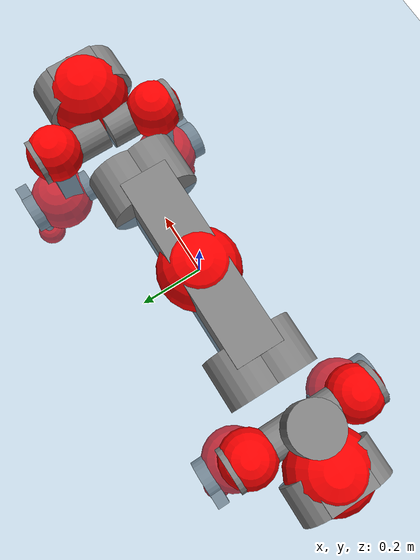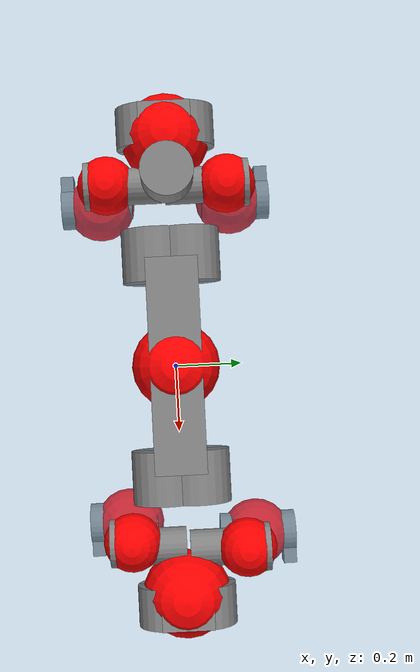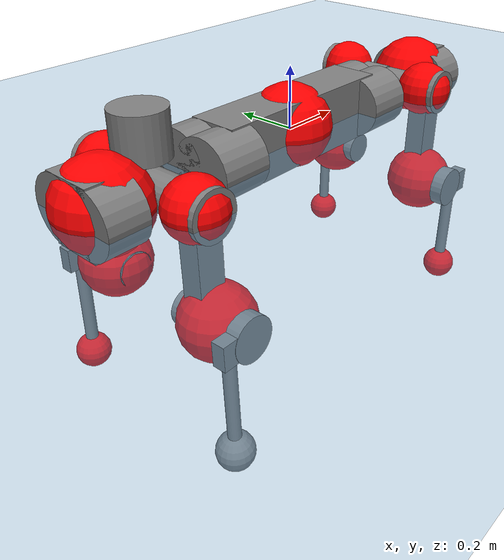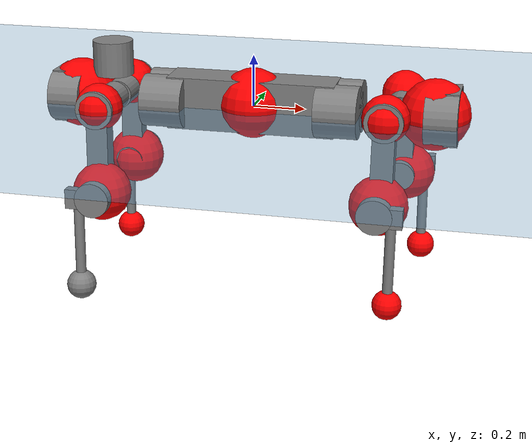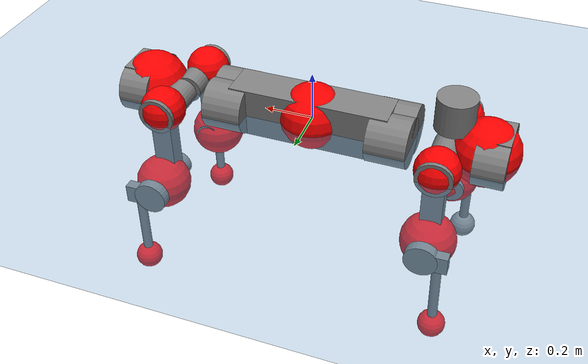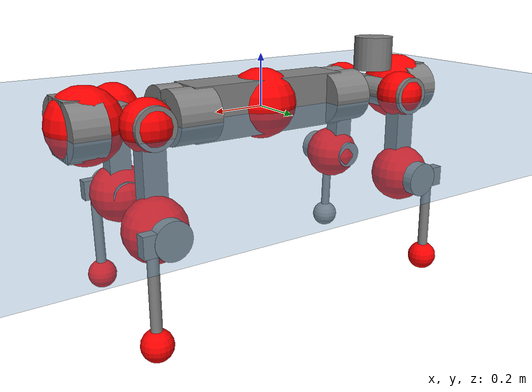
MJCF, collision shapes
<mujoco model="anymal_c">
  <compiler angle="radian" assetdir="assets" balanceinertia="true" inertiafromgeom="false"/>

  <option timestep="0.005" density="1.2" viscosity="2e-05"/>

  <size nkey="1"/>

  <visual>
    <quality shadowsize="8192"/>
    <map shadowclip="0.5"/>
  </visual>

  <default>
    <default class="/">
      <material specular="0" shininess="0.25"/>
      <geom contype="0" conaffinity="0" group="1" solref="-1000 -80"/>
      <site size="0.01 0.005 0.005" group="5"/>
      <general forcelimited="true" forcerange="-80 80" biastype="affine" gainprm="80" biasprm="0 -80 -2"/>
      <default class="anymal_c">
        <joint armature="0.01" damping="0.01" frictionloss="0.1"/>
        <default class="visual">
          <geom type="mesh" group="2"/>
          <default class="visual_zflip"/>
        </default>
        <default class="collision">
          <geom type="cylinder" group="3"/>
          <default class="foot">
            <geom size="0.03 0 0" type="sphere" condim="6" priority="1" friction="0.8 0.02 0.01" solimp="0.015 1 0.03"/>
          </default>
        </default>
      </default>
      <default class="reward_collision_sphere">
        <geom group="5" rgba="1 0 0 1"/>
      </default>
    </default>
  </default>

  <asset>
    <texture type="skybox" colorspace="auto" name="//unnamed_texture_0" builtin="gradient" rgb1="0.95 0.95 0.95" rgb2="0.95 0.95 0.95" width="100" height="600"/>
    <texture type="2d" colorspace="auto" name="texplane" builtin="checker" rgb1="0.345 0.575 0.748" rgb2="0.345 0.575 0.748" markrgb="1 1 1" width="512" height="512"/>
    <texture type="2d" colorspace="linear" name="base" file="base.png"/>
    <texture type="2d" colorspace="linear" name="top_shell" file="top_shell.png"/>
    <texture type="2d" colorspace="linear" name="bottom_shell" file="bottom_shell.png"/>
    <texture type="2d" colorspace="linear" name="remote" file="remote.png"/>
    <texture type="2d" colorspace="linear" name="hatch" file="hatch.png"/>
    <texture type="2d" colorspace="linear" name="handle" file="handle.png"/>
    <texture type="2d" colorspace="linear" name="face" file="face.png"/>
    <texture type="2d" colorspace="linear" name="battery" file="battery.png"/>
    <texture type="2d" colorspace="linear" name="lidar_cage" file="lidar_cage.png"/>
    <texture type="2d" colorspace="linear" name="depth_camera" file="depth_camera.png"/>
    <texture type="2d" colorspace="linear" name="wide_angle_camera" file="wide_angle_camera.png"/>
    <texture type="2d" colorspace="linear" name="lidar" file="lidar.png"/>
    <texture type="2d" colorspace="linear" name="drive" file="drive.png"/>
    <texture type="2d" colorspace="linear" name="hip_l" file="hip_l.png"/>
    <texture type="2d" colorspace="linear" name="shank_l" file="shank_l.png"/>
    <texture type="2d" colorspace="linear" name="foot" file="foot.png"/>
    <texture type="2d" colorspace="linear" name="thigh" file="thigh.png"/>
    <texture type="2d" colorspace="linear" name="shank_r" file="shank_r.png"/>
    <texture type="2d" colorspace="linear" name="hip_r" file="hip_r.png"/>
    <material name="MatPlane" class="/" texture="texplane" texuniform="true" texrepeat="2 2" specular="0.9" shininess="0.5"/>
    <material name="black_plastic" class="/" rgba="0.007 0.007 0.007 1"/>
    <material name="green" class="/" rgba="0.052 0.178 0.033 1"/>
    <material name="red" class="/" rgba="0.178 0.006 0.005 1"/>
    <material name="yellow" class="/" rgba="0.178 0.119 0.006 1"/>
    <material name="lwl" class="/" rgba="0.8 0.8 0.8 1"/>
    <material name="base" class="/" texture="base"/>
    <material name="top_shell" class="/" texture="top_shell"/>
    <material name="bottom_shell" class="/" texture="bottom_shell"/>
    <material name="hip_l" class="/" texture="hip_l"/>
    <material name="thigh" class="/" texture="thigh"/>
    <material name="shank_l" class="/" texture="shank_l"/>
    <material name="foot" class="/" texture="foot"/>
    <material name="hip_r" class="/" texture="hip_r"/>
    <material name="shank" class="/" texture="shank_r"/>
    <material name="hatch" class="/" texture="hatch"/>
    <material name="remote" class="/" texture="remote"/>
    <material name="handle" class="/" texture="handle"/>
    <material name="face" class="/" texture="face"/>
    <material name="depth_camera" class="/" texture="depth_camera"/>
    <material name="wide_angle_camera" class="/" texture="wide_angle_camera"/>
    <material name="battery" class="/" texture="battery"/>
    <material name="lidar_cage" class="/" texture="lidar_cage"/>
    <material name="lidar" class="/" texture="lidar"/>
    <material name="drive" class="/" texture="drive"/>
    <mesh name="base_0" class="/" file="base_0.obj"/>
    <mesh name="base_1" class="/" file="base_1.obj"/>
    <mesh name="base_2" class="/" file="base_2.obj"/>
    <mesh name="base_3" class="/" file="base_3.obj"/>
    <mesh name="base_4" class="/" file="base_4.obj"/>
    <mesh name="base_5" class="/" file="base_5.obj"/>
    <mesh name="top_shell" class="/" file="top_shell.obj"/>
    <mesh name="bottom_shell" class="/" file="bottom_shell.obj"/>
    <mesh name="remote" class="/" file="remote.obj"/>
    <mesh name="handle" class="/" file="handle.obj"/>
    <mesh name="face" class="/" file="face.obj"/>
    <mesh name="wide_angle_camera" class="/" file="wide_angle_camera.obj"/>
    <mesh name="depth_camera" class="/" file="depth_camera.obj"/>
    <mesh name="battery" class="/" file="battery.obj"/>
    <mesh name="lidar_cage" class="/" file="lidar_cage.obj"/>
    <mesh name="lidar" class="/" file="lidar.obj"/>
    <mesh name="drive" class="/" file="drive.obj"/>
    <mesh name="hip_l" class="/" file="hip_l.obj"/>
    <mesh name="thigh" class="/" file="thigh.obj"/>
    <mesh name="shank_l" class="/" file="shank_l.obj"/>
    <mesh name="foot" class="/" file="foot.obj"/>
    <mesh name="hip_r" class="/" file="hip_r.obj"/>
    <mesh name="hatch" class="/" file="hatch.obj"/>
    <mesh name="shank_r" class="/" file="shank_r.obj"/>
  </asset>

  <worldbody>
    <geom name="floor" class="/" size="100 100 0.125" type="plane" group="0" material="MatPlane"/>
    <light name="toplight_shadow" class="/" pos="0 0 5" dir="0.0990148 0.0990148 -0.990148" type="directional" ambient="0.04 0.04 0.04" diffuse="0.55 0.55 0.55" specular="0.12 0.12 0.12"/>
    <light name="toplight_fill" class="/" pos="0 0 5" dir="0.0990148 0.0990148 -0.990148" type="directional" castshadow="false" ambient="0.04 0.04 0.04" diffuse="0.3 0.3 0.3" specular="0.08 0.08 0.08"/>
    <body name="trunk" childclass="anymal_c" pos="-0.000963197 0.000335521 0.0129636" quat="0.999999 -0.0007128 -0.000499438 -0.00122676">
      <inertial pos="-3.02169e-05 -0.0168135 0.0425178" quat="0.500146 0.500977 0.49876 0.500114" mass="28.3745" diaginertia="5.24335 0.111059 0.459106"/>
      <joint name="//unnamed_joint_0" type="free" armature="0" damping="0" frictionloss="0"/>
      <geom name="//unnamed_geom_1" class="visual" material="green" mesh="base_0"/>
      <geom name="//unnamed_geom_2" class="visual" material="yellow" mesh="base_1"/>
      <geom name="//unnamed_geom_3" class="visual" material="red" mesh="base_2"/>
      <geom name="//unnamed_geom_4" class="visual" material="black_plastic" mesh="base_3"/>
      <geom name="//unnamed_geom_5" class="visual" material="lwl" mesh="base_4"/>
      <geom name="//unnamed_geom_6" class="visual" material="base" mesh="base_5"/>
      <geom name="trunk_1" class="collision" size="0.32638 0.0787814 0.10129" type="box"/>
      <geom name="trunk_2" class="collision" size="0.10129 0.081595" pos="0.337647 0.0489235 0" quat="0.707107 0 0.707107 0"/>
      <geom name="trunk_3" class="collision" size="0.10129 0.081595" pos="-0.337647 0.0489235 0" quat="0.707107 0 0.707107 0"/>
      <geom name="trunk_4" class="collision" size="0.10129 0.081595" pos="0.337647 -0.0489235 0" quat="0.707107 0 0.707107 0"/>
      <geom name="trunk_5" class="collision" size="0.10129 0.081595" pos="-0.337647 -0.0489235 0" quat="0.707107 0 0.707107 0"/>
      <geom name="//unnamed_geom_12" class="visual" material="top_shell" mesh="top_shell"/>
      <geom name="//unnamed_geom_13" class="visual" material="bottom_shell" mesh="bottom_shell"/>
      <geom name="//unnamed_geom_14" class="visual" material="remote" mesh="remote"/>
      <geom name="//unnamed_geom_15" class="visual" material="handle" mesh="handle"/>
      <geom name="//unnamed_geom_16" class="visual" pos="0.643469 0 0" quat="1 0 0 0" material="face" mesh="face"/>
      <geom name="trunk_6" class="collision" size="0.0618996 0.0787814 0.10129" pos="0.728851 0 0" type="box"/>
      <geom name="//unnamed_geom_18" class="collision" size="0.10129 0.0618996" pos="0.728851 0.0489235 0" quat="0.707107 0 0.707107 0"/>
      <geom name="//unnamed_geom_19" class="collision" size="0.10129 0.0618996" pos="0.728851 -0.0489235 0" quat="0.707107 0 0.707107 0"/>
      <geom name="//unnamed_geom_20" class="visual" pos="0.716647 0 -0.0296031" quat="0.965926 0 0.258819 0" material="depth_camera" mesh="depth_camera"/>
      <geom name="//unnamed_geom_21" class="visual" pos="0.796381 0 0.0168418" material="wide_angle_camera" mesh="wide_angle_camera"/>
      <geom name="//unnamed_geom_22" class="visual_zflip" pos="-0.643469 0 0" quat="0 0 0 1" material="face" mesh="face"/>
      <geom name="trunk_7" class="collision" size="0.0618996 0.0787814 0.10129" pos="-0.728851 0 0" quat="0 0 0 1" type="box"/>
      <geom name="//unnamed_geom_24" class="collision" size="0.10129 0.0618996" pos="-0.728851 -0.0489235 0" quat="0 -0.707107 0 0.707107"/>
      <geom name="//unnamed_geom_25" class="collision" size="0.10129 0.0618996" pos="-0.728851 0.0489235 0" quat="0 -0.707107 0 0.707107"/>
      <geom name="//unnamed_geom_26" class="visual" pos="-0.716647 0 -0.0296031" quat="0 -0.258819 0 0.965926" material="depth_camera" mesh="depth_camera"/>
      <geom name="//unnamed_geom_27" class="visual_zflip" pos="-0.796381 0 0.0168418" quat="0 0 0 1" material="wide_angle_camera" mesh="wide_angle_camera"/>
      <geom name="//unnamed_geom_28" class="visual" material="battery" mesh="battery"/>
      <geom name="//unnamed_geom_29" class="visual" pos="0 0.0422211 0.0359303" quat="0.683013 -0.183013 0.183013 0.683013" material="depth_camera" mesh="depth_camera"/>
      <geom name="//unnamed_geom_30" class="visual" pos="0 -0.0422211 0.0359303" quat="0.683013 0.183013 0.183013 -0.683013" material="depth_camera" mesh="depth_camera"/>
      <geom name="//unnamed_geom_31" class="visual" pos="-0.565073 0 0.0826902" quat="1 0 0 0" material="lidar_cage" mesh="lidar_cage"/>
      <geom name="trunk_8" class="collision" size="0.0787814 0.0675269" pos="-0.565073 0 0.150192"/>
      <geom name="//unnamed_geom_33" class="visual" pos="-0.565073 -0.000335314 0.15998" quat="0.707107 0 0 -0.707107" material="lidar" mesh="lidar"/>
      <geom name="//unnamed_geom_34" class="visual" pos="0.465564 0.0728377 -7.35079e-09" quat="0.258819 0.965926 0 0" material="drive" mesh="drive"/>
      <geom name="//unnamed_geom_35" class="visual" pos="0.465564 -0.0728377 7.35079e-09" quat="0.258819 -0.965926 0 0" material="drive" mesh="drive"/>
      <geom name="//unnamed_geom_36" class="visual" pos="-0.465564 0.0728377 7.35079e-09" quat="0 0 0.965926 -0.258819" material="drive" mesh="drive"/>
      <geom name="//unnamed_geom_37" class="visual" pos="-0.465564 -0.0728377 -7.35079e-09" quat="0 0 -0.965926 -0.258819" material="drive" mesh="drive"/>
      <geom name="//unnamed_geom_38" class="visual" pos="0.180078 0 0.0821277" quat="1 0 0 0" material="hatch" mesh="hatch"/>
      <geom name="//unnamed_geom_39" class="reward_collision_sphere" size="0.135054"/>
      <geom name="//unnamed_geom_40" class="reward_collision_sphere" size="0.135054" pos="0.69858 0 0"/>
      <geom name="//unnamed_geom_41" class="reward_collision_sphere" size="0.135054" pos="-0.69858 0 0"/>
      <site name="imu" pos="0.344297 0.0605138 0.00824752" size="0.0112545"/>
      <camera name="track" pos="0 -1.39781 0" quat="0.707107 0.707107 0 0" mode="trackcom"/>
      <camera name="ego_camera" pos="0.69858 0 -0.0450015" quat="-0.5 -0.5 0.5 0.5"/>
      <body name="LF_HIP" pos="0.468916 0.0845504 -0.00424296" quat="0.256946 0.966421 0.00224009 -0.00204532">
        <inertial pos="0.103143 -0.00758728 0.00130187" quat="-0.144933 0.701713 -0.117998 0.68751" mass="4.73475" diaginertia="0.0579339 0.00101897 0.00558837"/>
        <joint name="LF_HAA" pos="0 0 0" axis="0.999969 -0.00567606 0.00543927" range="-0.529552 0.468592" armature="0.00414788" damping="0" frictionloss="0.195178"/>
        <geom name="//unnamed_geom_42" class="visual" pos="0 -0.000432414 7.10236e-05" quat="0.258819 -0.965926 0 0" material="hip_l" mesh="hip_l"/>
        <geom name="//unnamed_geom_43" class="visual" pos="0.0929887 -0.101589 -0.0618046" quat="0.183013 -0.683013 0.683013 0.183013" material="drive" mesh="drive"/>
        <geom name="//unnamed_geom_44" class="collision" size="0.0562724 0.0787814" pos="0.0929887 -0.00835879 -0.00776838" quat="-0.353553 -0.612372 0.612372 -0.353553"/>
        <body name="LF_THIGH" pos="0.0941334 -0.0457744 -0.0566948" quat="0.183002 -0.682888 0.683077 0.18325">
          <inertial pos="0.0510655 0.00190814 -0.265619" quat="0.991169 -0.00293296 -0.0939753 0.0935098" mass="4.77233" diaginertia="0.258699 0.00492013 0.0109874"/>
          <joint name="LF_HFE" pos="0 0 0" axis="0.998801 0.0486144 -0.0058157" stiffness="0.0375408" range="-2.89631 2.95023" armature="0.00661629" damping="0.0177525" frictionloss="0.0872057"/>
          <geom name="//unnamed_geom_45" class="visual" pos="0.0169811 2.67583e-05 0" quat="0.707107 0 0 -0.707107" material="thigh" mesh="thigh"/>
          <geom name="//unnamed_geom_46" class="collision" size="0.0731541 0.0450179" pos="0.062096 0 0" quat="0.5 0.5 -0.5 -0.5"/>
          <geom name="//unnamed_geom_47" class="collision" size="0.0422043 0.0337634 0.159042" pos="0.046572 0 -0.158984" quat="0.707107 0 0 -0.707107" type="box"/>
          <geom name="//unnamed_geom_48" class="visual" pos="0.155706 0 -0.320636" quat="1 0 0 0" material="drive" mesh="drive"/>
          <geom name="//unnamed_geom_49" class="collision" size="0.0562724 0.0787814" pos="0.0470377 0 -0.320636" quat="0.707107 0 0.707107 0"/>
          <geom name="//unnamed_geom_50" class="reward_collision_sphere" size="0.0900358" pos="0.03881 0 0"/>
          <body name="LF_SHANK" pos="0.165259 -0.0127797 -0.334309" quat="0.999967 -0.00162808 -0.00557718 0.00569275">
            <inertial pos="0.0124052 -0.0433974 -0.0894836" quat="0.992887 -0.11724 -0.00032454 -0.0207642" mass="1.08514" diaginertia="0.088694 0.00157509 0.00224023"/>
            <joint name="LF_KFE" pos="0 0 0" axis="0.999359 0.0183639 -0.030715" range="-3.24008 3.25789" armature="0.0171387" damping="0" frictionloss="0.185668"/>
            <geom name="//unnamed_geom_51" class="visual" pos="0.00553718 0.0295245 0" quat="0.707107 0 0 -0.707107" material="shank_l" mesh="shank_l"/>
            <geom name="LF_kfe_act" class="collision" size="0.0675269 0.022509" pos="0.031048 0 0" quat="0.5 0.5 -0.5 -0.5"/>
            <geom name="//unnamed_geom_53" class="collision" size="0.0647121 0.0379839 0.0213835" pos="0.031048 -0.0401865 0" quat="0.5 0.5 -0.5 -0.5" type="box"/>
            <geom name="//unnamed_geom_54" class="visual" pos="0.0202575 -0.0519543 -0.380229" quat="0.382683 0 0 -0.92388" material="foot" mesh="foot"/>
            <geom name="LF_calf" class="collision" size="0.0196953 0.158972" pos="0.0202588 -0.0614689 -0.190114" quat="0.707107 0 0 -0.707107"/>
            <geom name="LF_foot" class="foot" size="0.0156621" pos="0.0202588 -0.0614689 -0.354916" quat="0.707107 0 0 -0.707107"/>
            <geom name="//unnamed_geom_57" class="reward_collision_sphere" size="0.112545" pos="-0.07762 0 0"/>
            <geom name="//unnamed_geom_58" class="reward_collision_sphere" size="0.0562724" pos="0.0202588 -0.0614689 -0.354916"/>
            <site name="LF_foot" class="foot" pos="0.0202588 -0.0614689 -0.354916" quat="0.707107 0 0 -0.707107" size="0.0112545"/>
          </body>
        </body>
      </body>
      <body name="RF_HIP" pos="0.457347 -0.0612894 -0.00197924" quat="0.259504 -0.965715 0.000421011 0.00716808">
        <inertial pos="0.089876 0.00537012 -0.00362501" quat="0.140061 0.679213 0.120663 0.710277" mass="4.28074" diaginertia="0.0663254 0.00110811 0.0056905"/>
        <joint name="RF_HAA" pos="0 0 0" axis="0.999935 0.0113577 -0.00108843" range="-0.767202 1.04332" armature="0.0128428" damping="0" frictionloss="0.18024"/>
        <geom name="//unnamed_geom_59" class="visual" pos="0 0.00043241 7.10234e-05" quat="0.258819 0.965926 0 0" material="hip_r" mesh="hip_r"/>
        <geom name="//unnamed_geom_60" class="visual" pos="0.0929887 0.101589 -0.0618046" quat="0.183013 0.683013 0.683013 -0.183013" material="drive" mesh="drive"/>
        <geom name="//unnamed_geom_61" class="collision" size="0.0562724 0.0787814" pos="0.0929887 0.00835879 -0.00776838" quat="-0.353553 0.612372 0.612372 0.353553"/>
        <body name="RF_THIGH" pos="0.0753895 0.0396381 -0.0456035" quat="0.185358 0.683128 0.683062 -0.180014">
          <inertial pos="0.0451113 0.0052132 -0.276026" quat="0.992144 -0.00655351 -0.0885054 0.0881716" mass="3.83369" diaginertia="0.254573 0.00432721 0.0054003"/>
          <joint name="RF_HFE" pos="0 0 0" axis="0.996585 -0.0474767 -0.0675591" stiffness="0.0172225" range="-3.50249 3.46425" armature="0.00973741" damping="0.07148" frictionloss="0.150495"/>
          <geom name="//unnamed_geom_62" class="visual" pos="0.0169811 2.67583e-05 0" quat="0.707107 0 0 -0.707107" material="thigh" mesh="thigh"/>
          <geom name="//unnamed_geom_63" class="collision" size="0.0731541 0.0450179" pos="0.062096 0 0" quat="0.5 0.5 0.5 0.5"/>
          <geom name="//unnamed_geom_64" class="collision" size="0.0422043 0.0337634 0.159042" pos="0.046572 0 -0.158984" quat="0.707107 0 0 0.707107" type="box"/>
          <geom name="//unnamed_geom_65" class="visual" pos="0.155706 0 -0.320636" quat="1 0 0 0" material="drive" mesh="drive"/>
          <geom name="//unnamed_geom_66" class="collision" size="0.0562724 0.0787814" pos="0.0470377 0 -0.320636" quat="0.707107 0 0.707107 0"/>
          <geom name="//unnamed_geom_67" class="reward_collision_sphere" size="0.0900358" pos="0.03881 0 0"/>
          <body name="RF_SHANK" pos="0.139141 -0.00635639 -0.331175" quat="0.999995 0.00147214 0.00265583 -4.25119e-05">
            <inertial pos="0.0174166 0.0495325 -0.108167" quat="0.992918 0.103479 -0.0239718 0.0532113" mass="1.01339" diaginertia="0.077065 0.00156516 0.00204818"/>
            <joint name="RF_KFE" pos="0 0 0" axis="0.99583 -0.0779754 0.047364" stiffness="0.0423446" range="-3.28905 3.43305" armature="0.0113392" damping="0" frictionloss="0.214684"/>
            <geom name="//unnamed_geom_68" class="visual" pos="0.00553714 -0.0295244 0" quat="0.707107 0 0 0.707107" material="shank" mesh="shank_r"/>
            <geom name="RF_kfe_act" class="collision" size="0.0675269 0.022509" pos="0.031048 0 0" quat="0.5 0.5 0.5 0.5"/>
            <geom name="//unnamed_geom_70" class="collision" size="0.0647121 0.0379839 0.0213835" pos="0.031048 0.0401865 0" quat="0.5 0.5 0.5 0.5" type="box"/>
            <geom name="//unnamed_geom_71" class="visual" pos="0.0202601 0.0519543 -0.380229" quat="0.382683 0 0 0.92388" material="foot" mesh="foot"/>
            <geom name="RF_calf" class="collision" size="0.0196953 0.158972" pos="0.0202588 0.0614689 -0.190114" quat="0.707107 0 0 0.707107"/>
            <geom name="RF_foot" class="foot" size="0.0255734" pos="0.0202588 0.0614689 -0.354916" quat="0.707107 0 0 0.707107"/>
            <geom name="//unnamed_geom_74" class="reward_collision_sphere" size="0.112545" pos="-0.07762 0 0"/>
            <geom name="//unnamed_geom_75" class="reward_collision_sphere" size="0.0562724" pos="0.0202588 0.0614689 -0.354916"/>
            <site name="RF_foot" class="foot" pos="0.0202588 0.0614689 -0.354916" quat="0.707107 0 0 0.707107" size="0.0112545"/>
          </body>
        </body>
      </body>
      <body name="LH_HIP" pos="-0.458984 0.0594884 -0.00418378" quat="-0.000267025 -0.00231959 0.965775 -0.259371">
        <inertial pos="0.0984055 0.0255566 -0.0150942" quat="0.0595392 0.650629 0.165963 0.738643" mass="4.90292" diaginertia="0.0475813 0.000698626 0.00667992"/>
        <joint name="LH_HAA" pos="0 0 0" axis="0.997872 0.045497 0.0467018" stiffness="0.067673" range="-0.624559 0.92502" armature="0.0107527" damping="0.0716198" frictionloss="0.0532751"/>
        <geom name="//unnamed_geom_76" class="visual" pos="0 0.00043241 7.10234e-05" quat="-0.258819 -0.965926 0 0" material="hip_r" mesh="hip_r"/>
        <geom name="//unnamed_geom_77" class="visual" pos="0.0929887 0.101589 -0.0618046" quat="0.183013 0.683013 0.683013 -0.183013" material="drive" mesh="drive"/>
        <geom name="//unnamed_geom_78" class="collision" size="0.0562724 0.0787814" pos="0.0929887 0.00835879 -0.00776838" quat="-0.353553 0.612372 0.612372 0.353553"/>
        <body name="LH_THIGH" pos="0.0919664 0.0657858 -0.0499845" quat="0.183163 0.686725 0.679166 -0.183286">
          <inertial pos="0.0561539 0.0128443 -0.275465" quat="0.994716 -0.00332553 -0.0365689 0.0958742" mass="4.10349" diaginertia="0.232866 0.004509 0.00523055"/>
          <joint name="LH_HFE" pos="0 0 0" axis="0.999992 0.00356815 -0.00201406" range="-3.13359 3.1094" armature="0.01237" damping="0.0485038" frictionloss="0.109471"/>
          <geom name="//unnamed_geom_79" class="visual" pos="0.0169811 2.67583e-05 0" quat="0.707107 0 0 -0.707107" material="thigh" mesh="thigh"/>
          <geom name="//unnamed_geom_80" class="collision" size="0.0731541 0.0450179" pos="0.062096 0 0" quat="0.5 0.5 -0.5 -0.5"/>
          <geom name="//unnamed_geom_81" class="collision" size="0.0422043 0.0337634 0.159042" pos="0.046572 0 -0.158984" quat="0.707107 0 0 -0.707107" type="box"/>
          <geom name="//unnamed_geom_82" class="visual" pos="0.155706 0 -0.320636" quat="1 0 0 0" material="drive" mesh="drive"/>
          <geom name="//unnamed_geom_83" class="collision" size="0.0562724 0.0787814" pos="0.0470377 0 -0.320636" quat="0.707107 0 0.707107 0"/>
          <geom name="//unnamed_geom_84" class="reward_collision_sphere" size="0.0900358" pos="0.03881 0 0"/>
          <body name="LH_SHANK" pos="0.142145 -0.00213874 -0.324777" quat="0.999974 0.00625302 0.00238562 -0.0028177">
            <inertial pos="-0.00535742 0.0510684 -0.0781977" quat="0.992866 0.117075 -0.000907514 0.0225651" mass="0.76643" diaginertia="0.0770809 0.000943008 0.00118286"/>
            <joint name="LH_KFE" pos="0 0 0" axis="0.998267 -0.0552985 -0.0201309" range="-3.12801 3.51616" armature="0.0127235" damping="0" frictionloss="0.0553155"/>
            <geom name="//unnamed_geom_85" class="visual" pos="0.00553714 -0.0295244 0" quat="-0.707107 0 0 -0.707107" material="shank" mesh="shank_r"/>
            <geom name="LH_kfe_act" class="collision" size="0.0675269 0.022509" pos="0.031048 0 0" quat="0.5 0.5 -0.5 -0.5"/>
            <geom name="//unnamed_geom_87" class="collision" size="0.0647121 0.0379839 0.0213835" pos="0.031048 0.0401865 0" quat="0.5 0.5 -0.5 -0.5" type="box"/>
            <geom name="//unnamed_geom_88" class="visual" pos="0.0202601 0.0519543 -0.380229" quat="-0.382683 0 0 -0.92388" material="foot" mesh="foot"/>
            <geom name="LH_calf" class="collision" size="0.0196953 0.158972" pos="0.0202588 0.0614689 -0.190114" quat="0.707107 0 0 -0.707107"/>
            <geom name="LH_foot" class="foot" size="0.0548986" pos="0.0202588 0.0614689 -0.354916" quat="0.707107 0 0 -0.707107"/>
            <geom name="//unnamed_geom_91" class="reward_collision_sphere" size="0.112545" pos="-0.07762 0 0"/>
            <geom name="//unnamed_geom_92" class="reward_collision_sphere" size="0.0562724" pos="0.0202588 0.0614689 -0.354916"/>
            <site name="LH_foot" class="foot" pos="0.0202588 0.0614689 -0.354916" quat="0.707107 0 0 -0.707107" size="0.0112545"/>
          </body>
        </body>
      </body>
      <body name="RH_HIP" pos="-0.463857 -0.0866864 -0.00210737" quat="0.000131281 -0.000285724 -0.967869 -0.251455">
        <inertial pos="0.0814212 -0.0209469 0.000331079" quat="-0.106926 0.689189 -0.220682 0.681824" mass="4.98885" diaginertia="0.0518826 0.00106712 0.00688899"/>
        <joint name="RH_HAA" pos="0 0 0" axis="0.999132 0.0379654 0.0171416" stiffness="0.0377508" range="-0.420025 0.352865" armature="0.0206435" damping="0.00750972" frictionloss="0.0457966"/>
        <geom name="//unnamed_geom_93" class="visual" pos="0 -0.000432414 7.10236e-05" quat="-0.258819 0.965926 0 0" material="hip_l" mesh="hip_l"/>
        <geom name="//unnamed_geom_94" class="visual" pos="0.0929887 -0.101589 -0.0618046" quat="-0.183013 0.683013 -0.683013 -0.183013" material="drive" mesh="drive"/>
        <geom name="//unnamed_geom_95" class="collision" size="0.0562724 0.0787814" pos="0.0929887 -0.00835879 -0.00776838" quat="0.353553 0.612372 -0.612372 0.353553"/>
        <body name="RH_THIGH" pos="0.0981509 -0.0533233 -0.0302941" quat="-0.184228 0.681939 -0.683284 -0.184777">
          <inertial pos="0.0474836 -0.0183667 -0.287592" quat="0.998569 0.0157935 -0.0405159 0.0311343" mass="5.46034" diaginertia="0.350605 0.0063345 0.00978438"/>
          <joint name="RH_HFE" pos="0 0 0" axis="0.998175 -0.0370821 0.0476648" range="-3.32656 3.46698" armature="0.00013518" damping="0.000968565" frictionloss="0.067955"/>
          <geom name="//unnamed_geom_96" class="visual" pos="0.0169811 2.67583e-05 0" quat="0.707107 0 0 -0.707107" material="thigh" mesh="thigh"/>
          <geom name="//unnamed_geom_97" class="collision" size="0.0731541 0.0450179" pos="0.062096 0 0" quat="0.5 0.5 0.5 0.5"/>
          <geom name="//unnamed_geom_98" class="collision" size="0.0422043 0.0337634 0.159042" pos="0.046572 0 -0.158984" quat="0.707107 0 0 0.707107" type="box"/>
          <geom name="//unnamed_geom_99" class="visual" pos="0.155706 0 -0.320636" quat="1 0 0 0" material="drive" mesh="drive"/>
          <geom name="//unnamed_geom_100" class="collision" size="0.0562724 0.0787814" pos="0.0470377 0 -0.320636" quat="0.707107 0 0.707107 0"/>
          <geom name="//unnamed_geom_101" class="reward_collision_sphere" size="0.0900358" pos="0.03881 0 0"/>
          <body name="RH_SHANK" pos="0.151253 0.0139177 -0.326304" quat="0.999978 0.00140539 -0.00552006 0.00340565">
            <inertial pos="-0.00182713 -0.0405453 -0.089384" quat="0.99717 -0.0495213 0.0525 -0.02104" mass="1.1364" diaginertia="0.0956581 0.00191083 0.00175457"/>
            <joint name="RH_KFE" pos="0 0 0" axis="0.996812 0.0639571 -0.047699" range="-3.42241 2.82785" armature="0.013019" damping="0.011656" frictionloss="0.0820249"/>
            <geom name="//unnamed_geom_102" class="visual" pos="0.00553718 0.0295245 0" quat="0.707107 0 0 -0.707107" material="shank_l" mesh="shank_l"/>
            <geom name="RH_kfe_act" class="collision" size="0.0675269 0.022509" pos="0.031048 0 0" quat="0.5 0.5 0.5 0.5"/>
            <geom name="//unnamed_geom_104" class="collision" size="0.0647121 0.0379839 0.0213835" pos="0.031048 -0.0401865 0" quat="0.5 0.5 0.5 0.5" type="box"/>
            <geom name="//unnamed_geom_105" class="visual" pos="0.0202575 -0.0519543 -0.380229" quat="0.382683 0 0 -0.92388" material="foot" mesh="foot"/>
            <geom name="RH_calf" class="collision" size="0.0196953 0.158972" pos="0.0202588 -0.0614689 -0.190114" quat="0.707107 0 0 0.707107"/>
            <geom name="RH_foot" class="foot" size="0.0567637" pos="0.0202588 -0.0614689 -0.354916" quat="0.707107 0 0 0.707107"/>
            <geom name="//unnamed_geom_108" class="reward_collision_sphere" size="0.112545" pos="-0.07762 0 0"/>
            <geom name="//unnamed_geom_109" class="reward_collision_sphere" size="0.0562724" pos="0.0202588 -0.0614689 -0.354916"/>
            <site name="RH_foot" class="foot" pos="0.0202588 -0.0614689 -0.354916" quat="0.707107 0 0 0.707107" size="0.0112545"/>
          </body>
        </body>
      </body>
    </body>
  </worldbody>

  <contact>
    <pair class="/" geom1="floor" geom2="LF_foot" name="//unnamed_contact_0"/>
    <pair class="/" geom1="floor" geom2="RF_foot" name="//unnamed_contact_1"/>
    <pair class="/" geom1="floor" geom2="LH_foot" name="//unnamed_contact_2"/>
    <pair class="/" geom1="floor" geom2="RH_foot" name="//unnamed_contact_3"/>
  </contact>

  <actuator>
    <general name="LF_HAA" class="/" joint="LF_HAA" forcerange="-127.413 127.413" gainprm="52.9199" biasprm="0 -52.9199 -1.71929"/>
    <general name="LF_HFE" class="/" joint="LF_HFE" forcerange="-150.944 150.944" gainprm="52.9199" biasprm="0 -52.9199 -1.71929"/>
    <general name="LF_KFE" class="/" joint="LF_KFE" forcerange="-66.0453 66.0453" gainprm="52.9199" biasprm="0 -52.9199 -1.71929"/>
    <general name="RF_HAA" class="/" joint="RF_HAA" forcerange="-116.311 116.311" gainprm="52.9199" biasprm="0 -52.9199 -1.71929"/>
    <general name="RF_HFE" class="/" joint="RF_HFE" forcerange="-61.4587 61.4587" gainprm="52.9199" biasprm="0 -52.9199 -1.71929"/>
    <general name="RF_KFE" class="/" joint="RF_KFE" forcerange="-123.439 123.439" gainprm="52.9199" biasprm="0 -52.9199 -1.71929"/>
    <general name="LH_HAA" class="/" joint="LH_HAA" forcerange="-48.5299 48.5299" gainprm="52.9199" biasprm="0 -52.9199 -1.71929"/>
    <general name="LH_HFE" class="/" joint="LH_HFE" forcerange="-95.851 95.851" gainprm="52.9199" biasprm="0 -52.9199 -1.71929"/>
    <general name="LH_KFE" class="/" joint="LH_KFE" forcerange="-126.034 126.034" gainprm="52.9199" biasprm="0 -52.9199 -1.71929"/>
    <general name="RH_HAA" class="/" joint="RH_HAA" forcerange="-150.094 150.094" gainprm="52.9199" biasprm="0 -52.9199 -1.71929"/>
    <general name="RH_HFE" class="/" joint="RH_HFE" forcerange="-110.123 110.123" gainprm="52.9199" biasprm="0 -52.9199 -1.71929"/>
    <general name="RH_KFE" class="/" joint="RH_KFE" forcerange="-112.069 112.069" gainprm="52.9199" biasprm="0 -52.9199 -1.71929"/>
  </actuator>

  <sensor>
    <gyro site="imu" name="imu_angular_velocity"/>
    <velocimeter site="imu" name="imu_linear_velocity"/>
    <framelinvel objtype="site" objname="LF_foot" name="LF_foot_global_linear_velocity"/>
    <framelinvel objtype="site" objname="RF_foot" name="RF_foot_global_linear_velocity"/>
    <framelinvel objtype="site" objname="LH_foot" name="LH_foot_global_linear_velocity"/>
    <framelinvel objtype="site" objname="RH_foot" name="RH_foot_global_linear_velocity"/>
  </sensor>

  <keyframe>
    <key name="home" qpos="0 0 0.55 1 0 0 0 0 0.4 -0.8 0 -0.4 0.8 0 -0.4 0.8 0 0.4 -0.8"/>
  </keyframe>
</mujoco>
